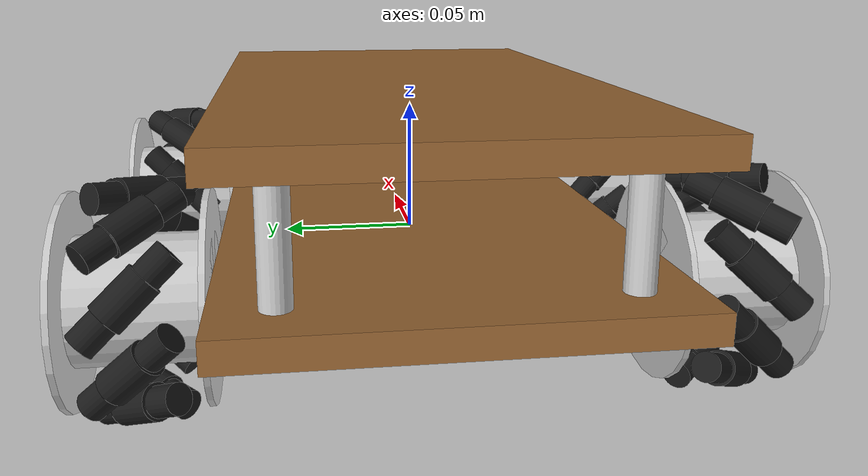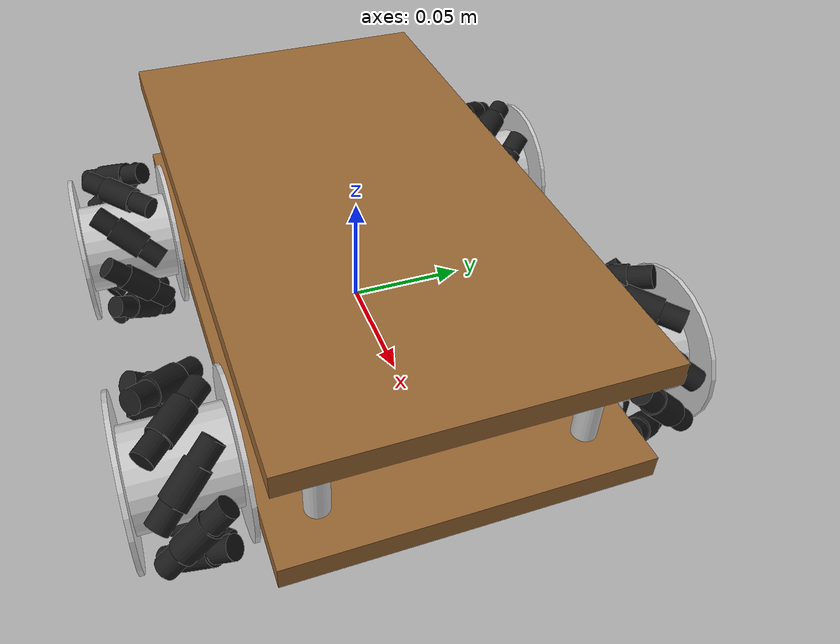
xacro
<?xml version="1.0"?>
<robot name="mecanum_bot" xmlns:xacro="http://www.ros.org/wiki/xacro">

  <xacro:include filename="$(find mecanum_bot)/urdf/materials.xacro" />
  <xacro:include filename="$(find mecanum_bot)/urdf/mecanum_wheel.xacro" />

  <xacro:property name="wheel_offset_x" value="0.073"/>
  <xacro:property name="wheel_offset_y" value="0.0955"/>
  <xacro:property name="wheel_offset_z" value="0.0"/>

  <xacro:property name="chassis_length" value="0.268"/>
  <xacro:property name="chassis_width" value="0.146"/>
  <xacro:property name="pallet_thickness" value="0.01"/>
  <xacro:property name="layer_gap" value="0.04"/>
  <xacro:property name="chassis_mass" value="2.0"/>

  <link name="base_link">
    <visual>
      <origin xyz="0 0 ${pallet_thickness/2}" rpy="0 0 0"/>
      <geometry>
        <box size="${chassis_length} ${chassis_width} ${pallet_thickness}"/>
      </geometry>
      <material name="wood_color">
        <color rgba="0.6 0.4 0.2 1"/>
      </material>
    </visual>

    <visual>
      <origin xyz="0 0 ${pallet_thickness + layer_gap + pallet_thickness/2}" rpy="0 0 0"/>
      <geometry>
        <box size="${chassis_length} ${chassis_width} ${pallet_thickness}"/>
      </geometry>
      <material name="wood_color"/>
    </visual>

    <visual>
      <origin xyz="${chassis_length/2 - 0.02} ${chassis_width/2 - 0.02} ${pallet_thickness + layer_gap/2}" rpy="0 0 0"/>
      <geometry><cylinder length="${layer_gap}" radius="0.005"/></geometry>
      <material name="silver"/>
    </visual>
    <visual>
      <origin xyz="-${chassis_length/2 - 0.02} ${chassis_width/2 - 0.02} ${pallet_thickness + layer_gap/2}" rpy="0 0 0"/>
      <geometry><cylinder length="${layer_gap}" radius="0.005"/></geometry>
      <material name="silver"/>
    </visual>
    <visual>
      <origin xyz="${chassis_length/2 - 0.02} -${chassis_width/2 - 0.02} ${pallet_thickness + layer_gap/2}" rpy="0 0 0"/>
      <geometry><cylinder length="${layer_gap}" radius="0.005"/></geometry>
      <material name="silver"/>
    </visual>
    <visual>
      <origin xyz="-${chassis_length/2 - 0.02} -${chassis_width/2 - 0.02} ${pallet_thickness + layer_gap/2}" rpy="0 0 0"/>
      <geometry><cylinder length="${layer_gap}" radius="0.005"/></geometry>
      <material name="silver"/>
    </visual>

    <collision>
      <origin xyz="0 0 ${layer_gap/2}" rpy="0 0 0"/>
      <geometry>
        <box size="${chassis_length} ${chassis_width} ${layer_gap + pallet_thickness*2}"/>
      </geometry>
    </collision>

    <inertial>
      <mass value="${chassis_mass}"/>
      <origin xyz="0 0 0.025"/>
      <inertia ixx="0.004" ixy="0" ixz="0" iyy="0.007" iyz="0" izz="0.01"/>
    </inertial>
  </link>

  <gazebo reference="base_link">
    <material>Gazebo/Wood</material>
  </gazebo>

  <xacro:mecanum_wheel name="front_left_wheel" parent="base_link"
    xyz="${wheel_offset_x} ${wheel_offset_y} ${wheel_offset_z}"
    rpy="-${pi/2} 0 0"
    roller_angle="${pi/4}"/>

  <xacro:mecanum_wheel name="front_right_wheel" parent="base_link"
    xyz="${wheel_offset_x} -${wheel_offset_y} ${wheel_offset_z}"
    rpy="-${pi/2} 0 0"
    roller_angle="-${pi/4}"/>

  <xacro:mecanum_wheel name="rear_left_wheel" parent="base_link"
    xyz="-${wheel_offset_x} ${wheel_offset_y} ${wheel_offset_z}"
    rpy="-${pi/2} 0 0"
    roller_angle="-${pi/4}"/>

  <xacro:mecanum_wheel name="rear_right_wheel" parent="base_link"
    xyz="-${wheel_offset_x} -${wheel_offset_y} ${wheel_offset_z}"
    rpy="-${pi/2} 0 0"
    roller_angle="${pi/4}"/>

  <gazebo>
    <plugin name="object_controller" filename="libgazebo_ros_planar_move.so">
      <ros>
        <remapping>cmd_vel:=cmd_vel</remapping>
        <remapping>odom:=odom</remapping>
      </ros>
      <update_rate>100</update_rate>
      <publish_rate>10</publish_rate>
      <robot_base_frame>base_link</robot_base_frame>
      <publish_odom>true</publish_odom>
      <publish_odom_tf>true</publish_odom_tf>
    </plugin>

    <plugin name="joint_state_publisher" filename="libgazebo_ros_joint_state_publisher.so">
      <ros>
        <remapping>joint_states:=joint_states</remapping>
      </ros>
      <update_rate>30</update_rate>
      <joint_name>front_left_wheel_joint</joint_name>
      <joint_name>front_right_wheel_joint</joint_name>
      <joint_name>rear_left_wheel_joint</joint_name>
      <joint_name>rear_right_wheel_joint</joint_name>
    </plugin>
  </gazebo>

</robot>

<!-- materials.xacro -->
<robot xmlns:xacro="http://www.ros.org/wiki/xacro">

  <material name="blue">
    <color rgba="0.0 0.0 0.8 1.0"/>
  </material>

  <material name="black">
    <color rgba="0.1 0.1 0.1 1.0"/>
  </material>

  <material name="silver">
    <color rgba="0.8 0.8 0.8 1.0"/>
  </material>

  <material name="yellow">
    <color rgba="1.0 1.0 0.0 1.0"/>
  </material>

</robot>

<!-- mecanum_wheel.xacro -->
<robot xmlns:xacro="http://www.ros.org/wiki/xacro">

  <xacro:property name="wheel_radius" value="0.04"/>
  <xacro:property name="wheel_width" value="0.045"/>
  <xacro:property name="wheel_mass" value="0.4"/>

  <xacro:property name="num_rollers" value="9"/>
  <xacro:property name="roller_radius_max" value="0.006"/>
  <xacro:property name="roller_radius_min" value="0.005"/>
  <xacro:property name="roller_length_total" value="0.04"/>

  <xacro:property name="plate_thickness" value="0.002"/>
  <xacro:property name="plate_radius" value="0.035"/>

  <xacro:macro name="roller_visual" params="name parent_link angle roller_angle">
    <link name="${name}_roller_link">
      <visual>
        <origin xyz="0 0 0" rpy="${pi/2} 0 0"/>
        <geometry>
          <cylinder length="${roller_length_total * 0.4}" radius="${roller_radius_max}"/>
        </geometry>
        <material name="black"/>
      </visual>

      <visual>
        <origin xyz="0 -${roller_length_total * 0.3} 0" rpy="${pi/2} 0 0"/>
        <geometry>
          <cylinder length="${roller_length_total * 0.3}" radius="${roller_radius_min}"/>
        </geometry>
        <material name="black"/>
      </visual>

      <visual>
        <origin xyz="0 ${roller_length_total * 0.3} 0" rpy="${pi/2} 0 0"/>
        <geometry>
          <cylinder length="${roller_length_total * 0.3}" radius="${roller_radius_min}"/>
        </geometry>
        <material name="black"/>
      </visual>
    </link>

    <joint name="${name}_roller_joint" type="fixed">
      <parent link="${parent_link}"/>
      <child link="${name}_roller_link"/>
      <origin xyz="${(plate_radius - 0.002)*cos(angle)} ${(plate_radius - 0.002)*sin(angle)} 0"
              rpy="${roller_angle} 0 ${angle}"/>
    </joint>
  </xacro:macro>

  <xacro:macro name="create_rollers" params="name parent_link roller_angle count">
    <xacro:if value="${count > 0}">
      <xacro:property name="angle" value="${(count-1) * (2*pi/num_rollers)}"/>
      <xacro:roller_visual name="${name}_${count}" parent_link="${parent_link}" angle="${angle}" roller_angle="${roller_angle}"/>
      <xacro:create_rollers name="${name}" parent_link="${parent_link}" roller_angle="${roller_angle}" count="${count-1}"/>
    </xacro:if>
  </xacro:macro>

  <xacro:macro name="mecanum_wheel" params="name parent xyz rpy roller_angle">

    <link name="${name}_link">
      <visual>
        <origin xyz="0 0 ${wheel_width/2 - plate_thickness/2}" rpy="0 0 0"/>
        <geometry>
          <cylinder length="${plate_thickness}" radius="${plate_radius}"/>
        </geometry>
        <material name="silver"/>
      </visual>

      <visual>
        <origin xyz="0 0 -${wheel_width/2 - plate_thickness/2}" rpy="0 0 0"/>
        <geometry>
          <cylinder length="${plate_thickness}" radius="${plate_radius}"/>
        </geometry>
        <material name="silver"/>
      </visual>

      <visual>
        <origin xyz="0 0 0" rpy="0 0 0"/>
        <geometry>
          <cylinder length="${wheel_width}" radius="${plate_radius * 0.6}"/>
        </geometry>
        <material name="silver"/>
      </visual>

      <collision>
        <origin xyz="0 0 0" rpy="0 0 0"/>
        <geometry>
          <cylinder length="${wheel_width}" radius="${wheel_radius}"/>
        </geometry>
      </collision>

      <inertial>
        <mass value="${wheel_mass}"/>
        <origin xyz="0 0 0" rpy="0 0 0"/>
        <inertia ixx="${(1/12)*wheel_mass*(3*wheel_radius*wheel_radius + wheel_width*wheel_width)}"
                 ixy="0" ixz="0"
                 iyy="${(1/12)*wheel_mass*(3*wheel_radius*wheel_radius + wheel_width*wheel_width)}"
                 iyz="0"
                 izz="${(1/2)*wheel_mass*wheel_radius*wheel_radius}"/>
      </inertial>
    </link>

    <joint name="${name}_joint" type="continuous">
      <parent link="${parent}"/>
      <child link="${name}_link"/>
      <origin xyz="${xyz}" rpy="${rpy}"/>
      <axis xyz="0 0 1"/>
    </joint>

    <xacro:create_rollers name="${name}" parent_link="${name}_link" roller_angle="${roller_angle}" count="${num_rollers}"/>

    <gazebo reference="${name}_link">
      <material>Gazebo/Grey</material>
      <mu1>0.0</mu1>
      <mu2>0.0</mu2>
    </gazebo>

  </xacro:macro>
</robot>
